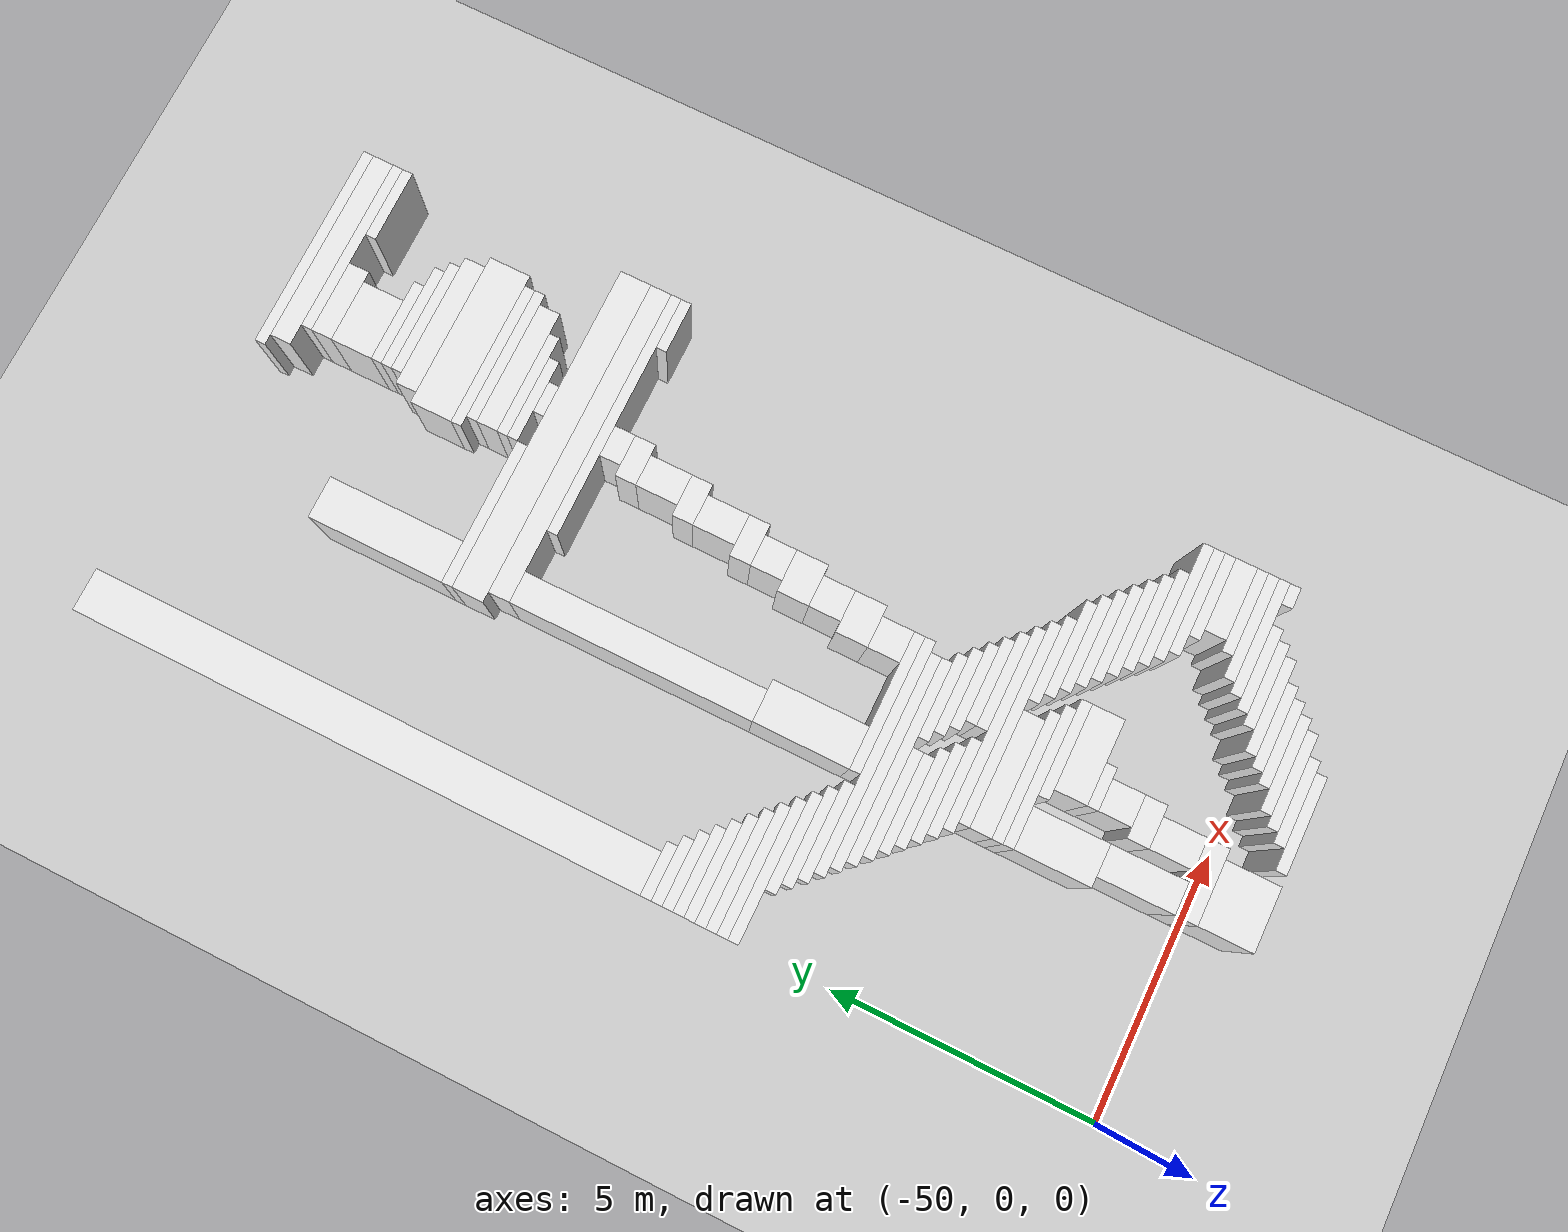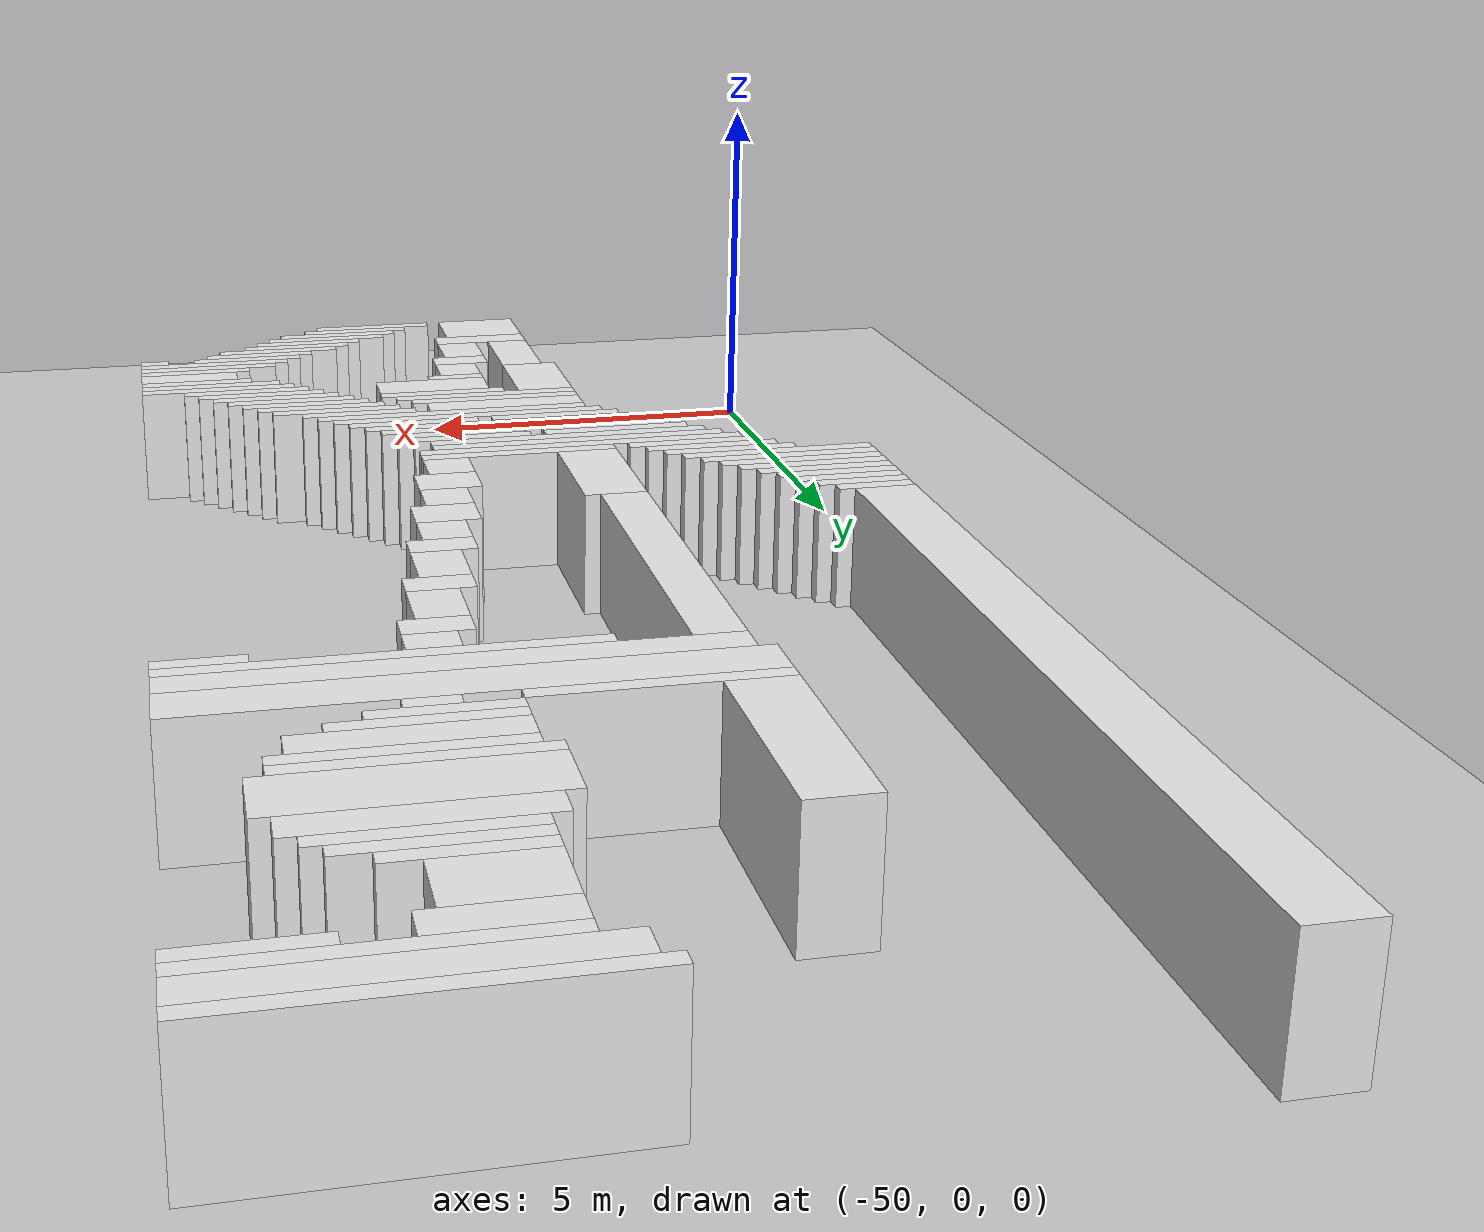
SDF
<sdf version="1.7">
 <world name="default">
  <model name="ground_plane">
   <static>1</static>
   <link name="link">
    <collision name="collision">
     <geometry><plane><normal>0 0 1</normal><size>120 120</size></plane></geometry>
    </collision>
    <visual name="visual">
     <geometry><plane><normal>0 0 1</normal><size>120 120</size></plane></geometry>
     <material>
      <script><uri>file://media/materials/scripts/gazebo.material</uri><name>Gazebo/Grey</name></script>
     </material>
    </visual>
   </link>
  </model>
  <model name="random_complex_01_model">
   <static>1</static>
   <link name="obs_1016">
    <pose>-42.4000 18.9000 0.8000 0 0 0</pose>
    <collision name="obs_1016_col"><geometry><box><size>4.0000 0.2000 1.6000</size></box></geometry></collision>
    <visual name="obs_1016_vis">
     <geometry><box><size>4.0000 0.2000 1.6000</size></box></geometry>
     <material>
      <script><uri>file://media/materials/scripts/gazebo.material</uri><name>Gazebo/White</name></script>
     </material>
    </visual>
   </link>
   <link name="obs_1027">
    <pose>-42.3000 18.6000 0.8000 0 0 0</pose>
    <collision name="obs_1027_col"><geometry><box><size>3.8000 0.4000 1.6000</size></box></geometry></collision>
    <visual name="obs_1027_vis">
     <geometry><box><size>3.8000 0.4000 1.6000</size></box></geometry>
     <material>
      <script><uri>file://media/materials/scripts/gazebo.material</uri><name>Gazebo/White</name></script>
     </material>
    </visual>
   </link>
   <link name="obs_1038">
    <pose>-42.1000 18.3000 0.8000 0 0 0</pose>
    <collision name="obs_1038_col"><geometry><box><size>3.4000 0.2000 1.6000</size></box></geometry></collision>
    <visual name="obs_1038_vis">
     <geometry><box><size>3.4000 0.2000 1.6000</size></box></geometry>
     <material>
      <script><uri>file://media/materials/scripts/gazebo.material</uri><name>Gazebo/White</name></script>
     </material>
    </visual>
   </link>
   <link name="obs_1047">
    <pose>-41.1000 18.1000 0.8000 0 0 0</pose>
    <collision name="obs_1047_col"><geometry><box><size>1.4000 0.2000 1.6000</size></box></geometry></collision>
    <visual name="obs_1047_vis">
     <geometry><box><size>1.4000 0.2000 1.6000</size></box></geometry>
     <material>
      <script><uri>file://media/materials/scripts/gazebo.material</uri><name>Gazebo/White</name></script>
     </material>
    </visual>
   </link>
   <link name="obs_1055">
    <pose>-43.1000 18.0000 0.8000 0 0 0</pose>
    <collision name="obs_1055_col"><geometry><box><size>1.4000 0.4000 1.6000</size></box></geometry></collision>
    <visual name="obs_1055_vis">
     <geometry><box><size>1.4000 0.4000 1.6000</size></box></geometry>
     <material>
      <script><uri>file://media/materials/scripts/gazebo.material</uri><name>Gazebo/White</name></script>
     </material>
    </visual>
   </link>
   <link name="obs_1087">
    <pose>-43.2000 17.4000 0.8000 0 0 0</pose>
    <collision name="obs_1087_col"><geometry><box><size>1.2000 0.8000 1.6000</size></box></geometry></collision>
    <visual name="obs_1087_vis">
     <geometry><box><size>1.2000 0.8000 1.6000</size></box></geometry>
     <material>
      <script><uri>file://media/materials/scripts/gazebo.material</uri><name>Gazebo/White</name></script>
     </material>
    </visual>
   </link>
   <link name="obs_1097">
    <pose>-43.0000 16.9000 0.8000 0 0 0</pose>
    <collision name="obs_1097_col"><geometry><box><size>1.6000 0.2000 1.6000</size></box></geometry></collision>
    <visual name="obs_1097_vis">
     <geometry><box><size>1.6000 0.2000 1.6000</size></box></geometry>
     <material>
      <script><uri>file://media/materials/scripts/gazebo.material</uri><name>Gazebo/White</name></script>
     </material>
    </visual>
   </link>
   <link name="obs_1107">
    <pose>-42.8000 16.7000 0.8000 0 0 0</pose>
    <collision name="obs_1107_col"><geometry><box><size>2.0000 0.2000 1.6000</size></box></geometry></collision>
    <visual name="obs_1107_vis">
     <geometry><box><size>2.0000 0.2000 1.6000</size></box></geometry>
     <material>
      <script><uri>file://media/materials/scripts/gazebo.material</uri><name>Gazebo/White</name></script>
     </material>
    </visual>
   </link>
   <link name="obs_1115">
    <pose>-42.7000 16.5000 0.8000 0 0 0</pose>
    <collision name="obs_1115_col"><geometry><box><size>2.2000 0.2000 1.6000</size></box></geometry></collision>
    <visual name="obs_1115_vis">
     <geometry><box><size>2.2000 0.2000 1.6000</size></box></geometry>
     <material>
      <script><uri>file://media/materials/scripts/gazebo.material</uri><name>Gazebo/White</name></script>
     </material>
    </visual>
   </link>
   <link name="obs_1132">
    <pose>-42.7000 16.2000 0.8000 0 0 0</pose>
    <collision name="obs_1132_col"><geometry><box><size>2.6000 0.4000 1.6000</size></box></geometry></collision>
    <visual name="obs_1132_vis">
     <geometry><box><size>2.6000 0.4000 1.6000</size></box></geometry>
     <material>
      <script><uri>file://media/materials/scripts/gazebo.material</uri><name>Gazebo/White</name></script>
     </material>
    </visual>
   </link>
   <link name="obs_1165">
    <pose>-42.7000 15.6000 0.8000 0 0 0</pose>
    <collision name="obs_1165_col"><geometry><box><size>3.0000 0.8000 1.6000</size></box></geometry></collision>
    <visual name="obs_1165_vis">
     <geometry><box><size>3.0000 0.8000 1.6000</size></box></geometry>
     <material>
      <script><uri>file://media/materials/scripts/gazebo.material</uri><name>Gazebo/White</name></script>
     </material>
    </visual>
   </link>
   <link name="obs_1177">
    <pose>-42.8000 15.1000 0.8000 0 0 0</pose>
    <collision name="obs_1177_col"><geometry><box><size>2.8000 0.2000 1.6000</size></box></geometry></collision>
    <visual name="obs_1177_vis">
     <geometry><box><size>2.8000 0.2000 1.6000</size></box></geometry>
     <material>
      <script><uri>file://media/materials/scripts/gazebo.material</uri><name>Gazebo/White</name></script>
     </material>
    </visual>
   </link>
   <link name="obs_1185">
    <pose>-42.7000 14.9000 0.8000 0 0 0</pose>
    <collision name="obs_1185_col"><geometry><box><size>2.6000 0.2000 1.6000</size></box></geometry></collision>
    <visual name="obs_1185_vis">
     <geometry><box><size>2.6000 0.2000 1.6000</size></box></geometry>
     <material>
      <script><uri>file://media/materials/scripts/gazebo.material</uri><name>Gazebo/White</name></script>
     </material>
    </visual>
   </link>
   <link name="obs_1199">
    <pose>-42.8000 14.6000 0.8000 0 0 0</pose>
    <collision name="obs_1199_col"><geometry><box><size>2.4000 0.4000 1.6000</size></box></geometry></collision>
    <visual name="obs_1199_vis">
     <geometry><box><size>2.4000 0.4000 1.6000</size></box></geometry>
     <material>
      <script><uri>file://media/materials/scripts/gazebo.material</uri><name>Gazebo/White</name></script>
     </material>
    </visual>
   </link>
   <link name="obs_1207">
    <pose>-43.0000 14.3000 0.8000 0 0 0</pose>
    <collision name="obs_1207_col"><geometry><box><size>2.0000 0.2000 1.6000</size></box></geometry></collision>
    <visual name="obs_1207_vis">
     <geometry><box><size>2.0000 0.2000 1.6000</size></box></geometry>
     <material>
      <script><uri>file://media/materials/scripts/gazebo.material</uri><name>Gazebo/White</name></script>
     </material>
    </visual>
   </link>
   <link name="obs_1211">
    <pose>-46.4000 15.3000 0.8000 0 0 0</pose>
    <collision name="obs_1211_col"><geometry><box><size>0.8000 2.6000 1.6000</size></box></geometry></collision>
    <visual name="obs_1211_vis">
     <geometry><box><size>0.8000 2.6000 1.6000</size></box></geometry>
     <material>
      <script><uri>file://media/materials/scripts/gazebo.material</uri><name>Gazebo/White</name></script>
     </material>
    </visual>
   </link>
   <link name="obs_1215">
    <pose>-43.2000 14.1000 0.8000 0 0 0</pose>
    <collision name="obs_1215_col"><geometry><box><size>1.6000 0.2000 1.6000</size></box></geometry></collision>
    <visual name="obs_1215_vis">
     <geometry><box><size>1.6000 0.2000 1.6000</size></box></geometry>
     <material>
      <script><uri>file://media/materials/scripts/gazebo.material</uri><name>Gazebo/White</name></script>
     </material>
    </visual>
   </link>
   <link name="obs_1220">
    <pose>-45.4000 13.9000 0.8000 0 0 0</pose>
    <collision name="obs_1220_col"><geometry><box><size>2.8000 0.2000 1.6000</size></box></geometry></collision>
    <visual name="obs_1220_vis">
     <geometry><box><size>2.8000 0.2000 1.6000</size></box></geometry>
     <material>
      <script><uri>file://media/materials/scripts/gazebo.material</uri><name>Gazebo/White</name></script>
     </material>
    </visual>
   </link>
   <link name="obs_1221">
    <pose>-43.1000 13.9000 0.8000 0 0 0</pose>
    <collision name="obs_1221_col"><geometry><box><size>0.6000 0.2000 1.6000</size></box></geometry></collision>
    <visual name="obs_1221_vis">
     <geometry><box><size>0.6000 0.2000 1.6000</size></box></geometry>
     <material>
      <script><uri>file://media/materials/scripts/gazebo.material</uri><name>Gazebo/White</name></script>
     </material>
    </visual>
   </link>
   <link name="obs_1246">
    <pose>-43.6000 13.5000 0.8000 0 0 0</pose>
    <collision name="obs_1246_col"><geometry><box><size>6.4000 0.6000 1.6000</size></box></geometry></collision>
    <visual name="obs_1246_vis">
     <geometry><box><size>6.4000 0.6000 1.6000</size></box></geometry>
     <material>
      <script><uri>file://media/materials/scripts/gazebo.material</uri><name>Gazebo/White</name></script>
     </material>
    </visual>
   </link>
   <link name="obs_1263">
    <pose>-43.5000 13.0000 0.8000 0 0 0</pose>
    <collision name="obs_1263_col"><geometry><box><size>6.2000 0.4000 1.6000</size></box></geometry></collision>
    <visual name="obs_1263_vis">
     <geometry><box><size>6.2000 0.4000 1.6000</size></box></geometry>
     <material>
      <script><uri>file://media/materials/scripts/gazebo.material</uri><name>Gazebo/White</name></script>
     </material>
    </visual>
   </link>
   <link name="obs_1273">
    <pose>-42.8000 12.7000 0.8000 0 0 0</pose>
    <collision name="obs_1273_col"><geometry><box><size>4.8000 0.2000 1.6000</size></box></geometry></collision>
    <visual name="obs_1273_vis">
     <geometry><box><size>4.8000 0.2000 1.6000</size></box></geometry>
     <material>
      <script><uri>file://media/materials/scripts/gazebo.material</uri><name>Gazebo/White</name></script>
     </material>
    </visual>
   </link>
   <link name="obs_1284">
    <pose>-40.9000 12.5000 0.8000 0 0 0</pose>
    <collision name="obs_1284_col"><geometry><box><size>1.0000 0.2000 1.6000</size></box></geometry></collision>
    <visual name="obs_1284_vis">
     <geometry><box><size>1.0000 0.2000 1.6000</size></box></geometry>
     <material>
      <script><uri>file://media/materials/scripts/gazebo.material</uri><name>Gazebo/White</name></script>
     </material>
    </visual>
   </link>
   <link name="obs_1290">
    <pose>-43.3000 12.4000 0.8000 0 0 0</pose>
    <collision name="obs_1290_col"><geometry><box><size>0.6000 0.4000 1.6000</size></box></geometry></collision>
    <visual name="obs_1290_vis">
     <geometry><box><size>0.6000 0.4000 1.6000</size></box></geometry>
     <material>
      <script><uri>file://media/materials/scripts/gazebo.material</uri><name>Gazebo/White</name></script>
     </material>
    </visual>
   </link>
   <link name="obs_1308">
    <pose>-43.4000 12.0000 0.8000 0 0 0</pose>
    <collision name="obs_1308_col"><geometry><box><size>0.8000 0.4000 1.6000</size></box></geometry></collision>
    <visual name="obs_1308_vis">
     <geometry><box><size>0.8000 0.4000 1.6000</size></box></geometry>
     <material>
      <script><uri>file://media/materials/scripts/gazebo.material</uri><name>Gazebo/White</name></script>
     </material>
    </visual>
   </link>
   <link name="obs_1331">
    <pose>-43.5000 11.4000 0.8000 0 0 0</pose>
    <collision name="obs_1331_col"><geometry><box><size>0.6000 0.8000 1.6000</size></box></geometry></collision>
    <visual name="obs_1331_vis">
     <geometry><box><size>0.6000 0.8000 1.6000</size></box></geometry>
     <material>
      <script><uri>file://media/materials/scripts/gazebo.material</uri><name>Gazebo/White</name></script>
     </material>
    </visual>
   </link>
   <link name="obs_1345">
    <pose>-43.6000 10.8000 0.8000 0 0 0</pose>
    <collision name="obs_1345_col"><geometry><box><size>0.8000 0.4000 1.6000</size></box></geometry></collision>
    <visual name="obs_1345_vis">
     <geometry><box><size>0.8000 0.4000 1.6000</size></box></geometry>
     <material>
      <script><uri>file://media/materials/scripts/gazebo.material</uri><name>Gazebo/White</name></script>
     </material>
    </visual>
   </link>
   <link name="obs_1371">
    <pose>-43.7000 10.2000 0.8000 0 0 0</pose>
    <collision name="obs_1371_col"><geometry><box><size>0.6000 0.8000 1.6000</size></box></geometry></collision>
    <visual name="obs_1371_vis">
     <geometry><box><size>0.6000 0.8000 1.6000</size></box></geometry>
     <material>
      <script><uri>file://media/materials/scripts/gazebo.material</uri><name>Gazebo/White</name></script>
     </material>
    </visual>
   </link>
   <link name="obs_1387">
    <pose>-43.8000 9.6000 0.8000 0 0 0</pose>
    <collision name="obs_1387_col"><geometry><box><size>0.8000 0.4000 1.6000</size></box></geometry></collision>
    <visual name="obs_1387_vis">
     <geometry><box><size>0.8000 0.4000 1.6000</size></box></geometry>
     <material>
      <script><uri>file://media/materials/scripts/gazebo.material</uri><name>Gazebo/White</name></script>
     </material>
    </visual>
   </link>
   <link name="obs_1410">
    <pose>-43.9000 9.1000 0.8000 0 0 0</pose>
    <collision name="obs_1410_col"><geometry><box><size>0.6000 0.6000 1.6000</size></box></geometry></collision>
    <visual name="obs_1410_vis">
     <geometry><box><size>0.6000 0.6000 1.6000</size></box></geometry>
     <material>
      <script><uri>file://media/materials/scripts/gazebo.material</uri><name>Gazebo/White</name></script>
     </material>
    </visual>
   </link>
   <link name="obs_1421">
    <pose>-49.6000 14.0000 0.8000 0 0 0</pose>
    <collision name="obs_1421_col"><geometry><box><size>0.8000 10.8000 1.6000</size></box></geometry></collision>
    <visual name="obs_1421_vis">
     <geometry><box><size>0.8000 10.8000 1.6000</size></box></geometry>
     <material>
      <script><uri>file://media/materials/scripts/gazebo.material</uri><name>Gazebo/White</name></script>
     </material>
    </visual>
   </link>
   <link name="obs_1429">
    <pose>-49.5000 8.5000 0.8000 0 0 0</pose>
    <collision name="obs_1429_col"><geometry><box><size>1.0000 0.2000 1.6000</size></box></geometry></collision>
    <visual name="obs_1429_vis">
     <geometry><box><size>1.0000 0.2000 1.6000</size></box></geometry>
     <material>
      <script><uri>file://media/materials/scripts/gazebo.material</uri><name>Gazebo/White</name></script>
     </material>
    </visual>
   </link>
   <link name="obs_1435">
    <pose>-46.3000 10.5000 0.8000 0 0 0</pose>
    <collision name="obs_1435_col"><geometry><box><size>0.6000 4.6000 1.6000</size></box></geometry></collision>
    <visual name="obs_1435_vis">
     <geometry><box><size>0.6000 4.6000 1.6000</size></box></geometry>
     <material>
      <script><uri>file://media/materials/scripts/gazebo.material</uri><name>Gazebo/White</name></script>
     </material>
    </visual>
   </link>
   <link name="obs_1436">
    <pose>-44.0000 8.5000 0.8000 0 0 0</pose>
    <collision name="obs_1436_col"><geometry><box><size>0.8000 0.6000 1.6000</size></box></geometry></collision>
    <visual name="obs_1436_vis">
     <geometry><box><size>0.8000 0.6000 1.6000</size></box></geometry>
     <material>
      <script><uri>file://media/materials/scripts/gazebo.material</uri><name>Gazebo/White</name></script>
     </material>
    </visual>
   </link>
   <link name="obs_1437">
    <pose>-49.4000 8.3000 0.8000 0 0 0</pose>
    <collision name="obs_1437_col"><geometry><box><size>1.2000 0.2000 1.6000</size></box></geometry></collision>
    <visual name="obs_1437_vis">
     <geometry><box><size>1.2000 0.2000 1.6000</size></box></geometry>
     <material>
      <script><uri>file://media/materials/scripts/gazebo.material</uri><name>Gazebo/White</name></script>
     </material>
    </visual>
   </link>
   <link name="obs_1446">
    <pose>-49.3000 8.1000 0.8000 0 0 0</pose>
    <collision name="obs_1446_col"><geometry><box><size>1.4000 0.2000 1.6000</size></box></geometry></collision>
    <visual name="obs_1446_vis">
     <geometry><box><size>1.4000 0.2000 1.6000</size></box></geometry>
     <material>
      <script><uri>file://media/materials/scripts/gazebo.material</uri><name>Gazebo/White</name></script>
     </material>
    </visual>
   </link>
   <link name="obs_1452">
    <pose>-49.2000 7.9000 0.8000 0 0 0</pose>
    <collision name="obs_1452_col"><geometry><box><size>1.6000 0.2000 1.6000</size></box></geometry></collision>
    <visual name="obs_1452_vis">
     <geometry><box><size>1.6000 0.2000 1.6000</size></box></geometry>
     <material>
      <script><uri>file://media/materials/scripts/gazebo.material</uri><name>Gazebo/White</name></script>
     </material>
    </visual>
   </link>
   <link name="obs_1458">
    <pose>-44.1000 7.9000 0.8000 0 0 0</pose>
    <collision name="obs_1458_col"><geometry><box><size>0.6000 0.6000 1.6000</size></box></geometry></collision>
    <visual name="obs_1458_vis">
     <geometry><box><size>0.6000 0.6000 1.6000</size></box></geometry>
     <material>
      <script><uri>file://media/materials/scripts/gazebo.material</uri><name>Gazebo/White</name></script>
     </material>
    </visual>
   </link>
   <link name="obs_1462">
    <pose>-49.1000 7.7000 0.8000 0 0 0</pose>
    <collision name="obs_1462_col"><geometry><box><size>1.8000 0.2000 1.6000</size></box></geometry></collision>
    <visual name="obs_1462_vis">
     <geometry><box><size>1.8000 0.2000 1.6000</size></box></geometry>
     <material>
      <script><uri>file://media/materials/scripts/gazebo.material</uri><name>Gazebo/White</name></script>
     </material>
    </visual>
   </link>
   <link name="obs_1469">
    <pose>-49.0000 7.5000 0.8000 0 0 0</pose>
    <collision name="obs_1469_col"><geometry><box><size>2.0000 0.2000 1.6000</size></box></geometry></collision>
    <visual name="obs_1469_vis">
     <geometry><box><size>2.0000 0.2000 1.6000</size></box></geometry>
     <material>
      <script><uri>file://media/materials/scripts/gazebo.material</uri><name>Gazebo/White</name></script>
     </material>
    </visual>
   </link>
   <link name="obs_1479">
    <pose>-48.9000 7.3000 0.8000 0 0 0</pose>
    <collision name="obs_1479_col"><geometry><box><size>2.2000 0.2000 1.6000</size></box></geometry></collision>
    <visual name="obs_1479_vis">
     <geometry><box><size>2.2000 0.2000 1.6000</size></box></geometry>
     <material>
      <script><uri>file://media/materials/scripts/gazebo.material</uri><name>Gazebo/White</name></script>
     </material>
    </visual>
   </link>
   <link name="obs_1484">
    <pose>-44.2000 7.3000 0.8000 0 0 0</pose>
    <collision name="obs_1484_col"><geometry><box><size>0.8000 0.6000 1.6000</size></box></geometry></collision>
    <visual name="obs_1484_vis">
     <geometry><box><size>0.8000 0.6000 1.6000</size></box></geometry>
     <material>
      <script><uri>file://media/materials/scripts/gazebo.material</uri><name>Gazebo/White</name></script>
     </material>
    </visual>
   </link>
   <link name="obs_1485">
    <pose>-48.8000 7.1000 0.8000 0 0 0</pose>
    <collision name="obs_1485_col"><geometry><box><size>2.4000 0.2000 1.6000</size></box></geometry></collision>
    <visual name="obs_1485_vis">
     <geometry><box><size>2.4000 0.2000 1.6000</size></box></geometry>
     <material>
      <script><uri>file://media/materials/scripts/gazebo.material</uri><name>Gazebo/White</name></script>
     </material>
    </visual>
   </link>
   <link name="obs_1493">
    <pose>-48.7000 6.9000 0.8000 0 0 0</pose>
    <collision name="obs_1493_col"><geometry><box><size>2.6000 0.2000 1.6000</size></box></geometry></collision>
    <visual name="obs_1493_vis">
     <geometry><box><size>2.6000 0.2000 1.6000</size></box></geometry>
     <material>
      <script><uri>file://media/materials/scripts/gazebo.material</uri><name>Gazebo/White</name></script>
     </material>
    </visual>
   </link>
   <link name="obs_1499">
    <pose>-48.1000 6.7000 0.8000 0 0 0</pose>
    <collision name="obs_1499_col"><geometry><box><size>1.8000 0.2000 1.6000</size></box></geometry></collision>
    <visual name="obs_1499_vis">
     <geometry><box><size>1.8000 0.2000 1.6000</size></box></geometry>
     <material>
      <script><uri>file://media/materials/scripts/gazebo.material</uri><name>Gazebo/White</name></script>
     </material>
    </visual>
   </link>
   <link name="obs_1507">
    <pose>-46.2000 7.3000 0.8000 0 0 0</pose>
    <collision name="obs_1507_col"><geometry><box><size>0.8000 1.8000 1.6000</size></box></geometry></collision>
    <visual name="obs_1507_vis">
     <geometry><box><size>0.8000 1.8000 1.6000</size></box></geometry>
     <material>
      <script><uri>file://media/materials/scripts/gazebo.material</uri><name>Gazebo/White</name></script>
     </material>
    </visual>
   </link>
   <link name="obs_1510">
    <pose>-44.3000 6.7000 0.8000 0 0 0</pose>
    <collision name="obs_1510_col"><geometry><box><size>0.6000 0.6000 1.6000</size></box></geometry></collision>
    <visual name="obs_1510_vis">
     <geometry><box><size>0.6000 0.6000 1.6000</size></box></geometry>
     <material>
      <script><uri>file://media/materials/scripts/gazebo.material</uri><name>Gazebo/White</name></script>
     </material>
    </visual>
   </link>
   <link name="obs_1512">
    <pose>-47.9000 6.5000 0.8000 0 0 0</pose>
    <collision name="obs_1512_col"><geometry><box><size>1.8000 0.2000 1.6000</size></box></geometry></collision>
    <visual name="obs_1512_vis">
     <geometry><box><size>1.8000 0.2000 1.6000</size></box></geometry>
     <material>
      <script><uri>file://media/materials/scripts/gazebo.material</uri><name>Gazebo/White</name></script>
     </material>
    </visual>
   </link>
   <link name="obs_1519">
    <pose>-47.7000 6.3000 0.8000 0 0 0</pose>
    <collision name="obs_1519_col"><geometry><box><size>1.8000 0.2000 1.6000</size></box></geometry></collision>
    <visual name="obs_1519_vis">
     <geometry><box><size>1.8000 0.2000 1.6000</size></box></geometry>
     <material>
      <script><uri>file://media/materials/scripts/gazebo.material</uri><name>Gazebo/White</name></script>
     </material>
    </visual>
   </link>
   <link name="obs_1520">
    <pose>-45.3000 6.3000 0.8000 0 0 0</pose>
    <collision name="obs_1520_col"><geometry><box><size>2.6000 0.2000 1.6000</size></box></geometry></collision>
    <visual name="obs_1520_vis">
     <geometry><box><size>2.6000 0.2000 1.6000</size></box></geometry>
     <material>
      <script><uri>file://media/materials/scripts/gazebo.material</uri><name>Gazebo/White</name></script>
     </material>
    </visual>
   </link>
   <link name="obs_1528">
    <pose>-46.2000 6.1000 0.8000 0 0 0</pose>
    <collision name="obs_1528_col"><geometry><box><size>4.4000 0.2000 1.6000</size></box></geometry></collision>
    <visual name="obs_1528_vis">
     <geometry><box><size>4.4000 0.2000 1.6000</size></box></geometry>
     <material>
      <script><uri>file://media/materials/scripts/gazebo.material</uri><name>Gazebo/White</name></script>
     </material>
    </visual>
   </link>
   <link name="obs_1537">
    <pose>-46.2000 5.9000 0.8000 0 0 0</pose>
    <collision name="obs_1537_col"><geometry><box><size>4.0000 0.2000 1.6000</size></box></geometry></collision>
    <visual name="obs_1537_vis">
     <geometry><box><size>4.0000 0.2000 1.6000</size></box></geometry>
     <material>
      <script><uri>file://media/materials/scripts/gazebo.material</uri><name>Gazebo/White</name></script>
     </material>
    </visual>
   </link>
   <link name="obs_1545">
    <pose>-46.1000 5.7000 0.8000 0 0 0</pose>
    <collision name="obs_1545_col"><geometry><box><size>3.8000 0.2000 1.6000</size></box></geometry></collision>
    <visual name="obs_1545_vis">
     <geometry><box><size>3.8000 0.2000 1.6000</size></box></geometry>
     <material>
      <script><uri>file://media/materials/scripts/gazebo.material</uri><name>Gazebo/White</name></script>
     </material>
    </visual>
   </link>
   <link name="obs_1552">
    <pose>-46.8000 5.5000 0.8000 0 0 0</pose>
    <collision name="obs_1552_col"><geometry><box><size>2.0000 0.2000 1.6000</size></box></geometry></collision>
    <visual name="obs_1552_vis">
     <geometry><box><size>2.0000 0.2000 1.6000</size></box></geometry>
     <material>
      <script><uri>file://media/materials/scripts/gazebo.material</uri><name>Gazebo/White</name></script>
     </material>
    </visual>
   </link>
   <link name="obs_1553">
    <pose>-44.8000 5.5000 0.8000 0 0 0</pose>
    <collision name="obs_1553_col"><geometry><box><size>1.6000 0.2000 1.6000</size></box></geometry></collision>
    <visual name="obs_1553_vis">
     <geometry><box><size>1.6000 0.2000 1.6000</size></box></geometry>
     <material>
      <script><uri>file://media/materials/scripts/gazebo.material</uri><name>Gazebo/White</name></script>
     </material>
    </visual>
   </link>
   <link name="obs_1561">
    <pose>-46.7000 5.3000 0.8000 0 0 0</pose>
    <collision name="obs_1561_col"><geometry><box><size>1.8000 0.2000 1.6000</size></box></geometry></collision>
    <visual name="obs_1561_vis">
     <geometry><box><size>1.8000 0.2000 1.6000</size></box></geometry>
     <material>
      <script><uri>file://media/materials/scripts/gazebo.material</uri><name>Gazebo/White</name></script>
     </material>
    </visual>
   </link>
   <link name="obs_1562">
    <pose>-44.6000 5.3000 0.8000 0 0 0</pose>
    <collision name="obs_1562_col"><geometry><box><size>1.6000 0.2000 1.6000</size></box></geometry></collision>
    <visual name="obs_1562_vis">
     <geometry><box><size>1.6000 0.2000 1.6000</size></box></geometry>
     <material>
      <script><uri>file://media/materials/scripts/gazebo.material</uri><name>Gazebo/White</name></script>
     </material>
    </visual>
   </link>
   <link name="obs_1572">
    <pose>-46.5000 5.1000 0.8000 0 0 0</pose>
    <collision name="obs_1572_col"><geometry><box><size>1.8000 0.2000 1.6000</size></box></geometry></collision>
    <visual name="obs_1572_vis">
     <geometry><box><size>1.8000 0.2000 1.6000</size></box></geometry>
     <material>
      <script><uri>file://media/materials/scripts/gazebo.material</uri><name>Gazebo/White</name></script>
     </material>
    </visual>
   </link>
   <link name="obs_1573">
    <pose>-44.4000 5.1000 0.8000 0 0 0</pose>
    <collision name="obs_1573_col"><geometry><box><size>1.6000 0.2000 1.6000</size></box></geometry></collision>
    <visual name="obs_1573_vis">
     <geometry><box><size>1.6000 0.2000 1.6000</size></box></geometry>
     <material>
      <script><uri>file://media/materials/scripts/gazebo.material</uri><name>Gazebo/White</name></script>
     </material>
    </visual>
   </link>
   <link name="obs_1581">
    <pose>-46.3000 4.9000 0.8000 0 0 0</pose>
    <collision name="obs_1581_col"><geometry><box><size>1.8000 0.2000 1.6000</size></box></geometry></collision>
    <visual name="obs_1581_vis">
     <geometry><box><size>1.8000 0.2000 1.6000</size></box></geometry>
     <material>
      <script><uri>file://media/materials/scripts/gazebo.material</uri><name>Gazebo/White</name></script>
     </material>
    </visual>
   </link>
   <link name="obs_1582">
    <pose>-44.2000 4.9000 0.8000 0 0 0</pose>
    <collision name="obs_1582_col"><geometry><box><size>1.6000 0.2000 1.6000</size></box></geometry></collision>
    <visual name="obs_1582_vis">
     <geometry><box><size>1.6000 0.2000 1.6000</size></box></geometry>
     <material>
      <script><uri>file://media/materials/scripts/gazebo.material</uri><name>Gazebo/White</name></script>
     </material>
    </visual>
   </link>
   <link name="obs_1591">
    <pose>-46.1000 4.7000 0.8000 0 0 0</pose>
    <collision name="obs_1591_col"><geometry><box><size>1.8000 0.2000 1.6000</size></box></geometry></collision>
    <visual name="obs_1591_vis">
     <geometry><box><size>1.8000 0.2000 1.6000</size></box></geometry>
     <material>
      <script><uri>file://media/materials/scripts/gazebo.material</uri><name>Gazebo/White</name></script>
     </material>
    </visual>
   </link>
   <link name="obs_1592">
    <pose>-44.1000 4.7000 0.8000 0 0 0</pose>
    <collision name="obs_1592_col"><geometry><box><size>1.8000 0.2000 1.6000</size></box></geometry></collision>
    <visual name="obs_1592_vis">
     <geometry><box><size>1.8000 0.2000 1.6000</size></box></geometry>
     <material>
      <script><uri>file://media/materials/scripts/gazebo.material</uri><name>Gazebo/White</name></script>
     </material>
    </visual>
   </link>
   <link name="obs_1603">
    <pose>-44.9000 4.5000 0.8000 0 0 0</pose>
    <collision name="obs_1603_col"><geometry><box><size>3.8000 0.2000 1.6000</size></box></geometry></collision>
    <visual name="obs_1603_vis">
     <geometry><box><size>3.8000 0.2000 1.6000</size></box></geometry>
     <material>
      <script><uri>file://media/materials/scripts/gazebo.material</uri><name>Gazebo/White</name></script>
     </material>
    </visual>
   </link>
   <link name="obs_1612">
    <pose>-44.7000 4.3000 0.8000 0 0 0</pose>
    <collision name="obs_1612_col"><geometry><box><size>3.8000 0.2000 1.6000</size></box></geometry></collision>
    <visual name="obs_1612_vis">
     <geometry><box><size>3.8000 0.2000 1.6000</size></box></geometry>
     <material>
      <script><uri>file://media/materials/scripts/gazebo.material</uri><name>Gazebo/White</name></script>
     </material>
    </visual>
   </link>
   <link name="obs_1621">
    <pose>-43.4000 4.1000 0.8000 0 0 0</pose>
    <collision name="obs_1621_col"><geometry><box><size>1.6000 0.2000 1.6000</size></box></geometry></collision>
    <visual name="obs_1621_vis">
     <geometry><box><size>1.6000 0.2000 1.6000</size></box></geometry>
     <material>
      <script><uri>file://media/materials/scripts/gazebo.material</uri><name>Gazebo/White</name></script>
     </material>
    </visual>
   </link>
   <link name="obs_1634">
    <pose>-45.5000 4.0000 0.8000 0 0 0</pose>
    <collision name="obs_1634_col"><geometry><box><size>2.2000 0.4000 1.6000</size></box></geometry></collision>
    <visual name="obs_1634_vis">
     <geometry><box><size>2.2000 0.4000 1.6000</size></box></geometry>
     <material>
      <script><uri>file://media/materials/scripts/gazebo.material</uri><name>Gazebo/White</name></script>
     </material>
    </visual>
   </link>
   <link name="obs_1635">
    <pose>-43.1000 3.9000 0.8000 0 0 0</pose>
    <collision name="obs_1635_col"><geometry><box><size>1.8000 0.2000 1.6000</size></box></geometry></collision>
    <visual name="obs_1635_vis">
     <geometry><box><size>1.8000 0.2000 1.6000</size></box></geometry>
     <material>
      <script><uri>file://media/materials/scripts/gazebo.material</uri><name>Gazebo/White</name></script>
     </material>
    </visual>
   </link>
   <link name="obs_1648">
    <pose>-45.4000 3.7000 0.8000 0 0 0</pose>
    <collision name="obs_1648_col"><geometry><box><size>2.4000 0.2000 1.6000</size></box></geometry></collision>
    <visual name="obs_1648_vis">
     <geometry><box><size>2.4000 0.2000 1.6000</size></box></geometry>
     <material>
      <script><uri>file://media/materials/scripts/gazebo.material</uri><name>Gazebo/White</name></script>
     </material>
    </visual>
   </link>
   <link name="obs_1649">
    <pose>-42.9000 3.7000 0.8000 0 0 0</pose>
    <collision name="obs_1649_col"><geometry><box><size>1.8000 0.2000 1.6000</size></box></geometry></collision>
    <visual name="obs_1649_vis">
     <geometry><box><size>1.8000 0.2000 1.6000</size></box></geometry>
     <material>
      <script><uri>file://media/materials/scripts/gazebo.material</uri><name>Gazebo/White</name></script>
     </material>
    </visual>
   </link>
   <link name="obs_1666">
    <pose>-45.3000 3.5000 0.8000 0 0 0</pose>
    <collision name="obs_1666_col"><geometry><box><size>2.6000 0.2000 1.6000</size></box></geometry></collision>
    <visual name="obs_1666_vis">
     <geometry><box><size>2.6000 0.2000 1.6000</size></box></geometry>
     <material>
      <script><uri>file://media/materials/scripts/gazebo.material</uri><name>Gazebo/White</name></script>
     </material>
    </visual>
   </link>
   <link name="obs_1667">
    <pose>-42.7000 3.5000 0.8000 0 0 0</pose>
    <collision name="obs_1667_col"><geometry><box><size>1.8000 0.2000 1.6000</size></box></geometry></collision>
    <visual name="obs_1667_vis">
     <geometry><box><size>1.8000 0.2000 1.6000</size></box></geometry>
     <material>
      <script><uri>file://media/materials/scripts/gazebo.material</uri><name>Gazebo/White</name></script>
     </material>
    </visual>
   </link>
   <link name="obs_1678">
    <pose>-44.7000 3.3000 0.8000 0 0 0</pose>
    <collision name="obs_1678_col"><geometry><box><size>1.8000 0.2000 1.6000</size></box></geometry></collision>
    <visual name="obs_1678_vis">
     <geometry><box><size>1.8000 0.2000 1.6000</size></box></geometry>
     <material>
      <script><uri>file://media/materials/scripts/gazebo.material</uri><name>Gazebo/White</name></script>
     </material>
    </visual>
   </link>
   <link name="obs_1679">
    <pose>-42.5000 3.3000 0.8000 0 0 0</pose>
    <collision name="obs_1679_col"><geometry><box><size>1.8000 0.2000 1.6000</size></box></geometry></collision>
    <visual name="obs_1679_vis">
     <geometry><box><size>1.8000 0.2000 1.6000</size></box></geometry>
     <material>
      <script><uri>file://media/materials/scripts/gazebo.material</uri><name>Gazebo/White</name></script>
     </material>
    </visual>
   </link>
   <link name="obs_1691">
    <pose>-42.3000 3.1000 0.8000 0 0 0</pose>
    <collision name="obs_1691_col"><geometry><box><size>1.8000 0.2000 1.6000</size></box></geometry></collision>
    <visual name="obs_1691_vis">
     <geometry><box><size>1.8000 0.2000 1.6000</size></box></geometry>
     <material>
      <script><uri>file://media/materials/scripts/gazebo.material</uri><name>Gazebo/White</name></script>
     </material>
    </visual>
   </link>
   <link name="obs_1703">
    <pose>-42.1000 2.9000 0.8000 0 0 0</pose>
    <collision name="obs_1703_col"><geometry><box><size>1.8000 0.2000 1.6000</size></box></geometry></collision>
    <visual name="obs_1703_vis">
     <geometry><box><size>1.8000 0.2000 1.6000</size></box></geometry>
     <material>
      <script><uri>file://media/materials/scripts/gazebo.material</uri><name>Gazebo/White</name></script>
     </material>
    </visual>
   </link>
   <link name="obs_1711">
    <pose>-44.6000 2.9000 0.8000 0 0 0</pose>
    <collision name="obs_1711_col"><geometry><box><size>1.6000 0.6000 1.6000</size></box></geometry></collision>
    <visual name="obs_1711_vis">
     <geometry><box><size>1.6000 0.6000 1.6000</size></box></geometry>
     <material>
      <script><uri>file://media/materials/scripts/gazebo.material</uri><name>Gazebo/White</name></script>
     </material>
    </visual>
   </link>
   <link name="obs_1715">
    <pose>-41.9000 2.7000 0.8000 0 0 0</pose>
    <collision name="obs_1715_col"><geometry><box><size>1.8000 0.2000 1.6000</size></box></geometry></collision>
    <visual name="obs_1715_vis">
     <geometry><box><size>1.8000 0.2000 1.6000</size></box></geometry>
     <material>
      <script><uri>file://media/materials/scripts/gazebo.material</uri><name>Gazebo/White</name></script>
     </material>
    </visual>
   </link>
   <link name="obs_1724">
    <pose>-45.0000 2.5000 0.8000 0 0 0</pose>
    <collision name="obs_1724_col"><geometry><box><size>0.8000 0.2000 1.6000</size></box></geometry></collision>
    <visual name="obs_1724_vis">
     <geometry><box><size>0.8000 0.2000 1.6000</size></box></geometry>
     <material>
      <script><uri>file://media/materials/scripts/gazebo.material</uri><name>Gazebo/White</name></script>
     </material>
    </visual>
   </link>
   <link name="obs_1725">
    <pose>-41.5000 2.5000 0.8000 0 0 0</pose>
    <collision name="obs_1725_col"><geometry><box><size>2.2000 0.2000 1.6000</size></box></geometry></collision>
    <visual name="obs_1725_vis">
     <geometry><box><size>2.2000 0.2000 1.6000</size></box></geometry>
     <material>
      <script><uri>file://media/materials/scripts/gazebo.material</uri><name>Gazebo/White</name></script>
     </material>
    </visual>
   </link>
   <link name="obs_1733">
    <pose>-41.4000 2.3000 0.8000 0 0 0</pose>
    <collision name="obs_1733_col"><geometry><box><size>2.0000 0.2000 1.6000</size></box></geometry></collision>
    <visual name="obs_1733_vis">
     <geometry><box><size>2.0000 0.2000 1.6000</size></box></geometry>
     <material>
      <script><uri>file://media/materials/scripts/gazebo.material</uri><name>Gazebo/White</name></script>
     </material>
    </visual>
   </link>
   <link name="obs_1740">
    <pose>-46.2000 2.7000 0.8000 0 0 0</pose>
    <collision name="obs_1740_col"><geometry><box><size>0.8000 1.4000 1.6000</size></box></geometry></collision>
    <visual name="obs_1740_vis">
     <geometry><box><size>0.8000 1.4000 1.6000</size></box></geometry>
     <material>
      <script><uri>file://media/materials/scripts/gazebo.material</uri><name>Gazebo/White</name></script>
     </material>
    </visual>
   </link>
   <link name="obs_1745">
    <pose>-41.2000 2.1000 0.8000 0 0 0</pose>
    <collision name="obs_1745_col"><geometry><box><size>1.6000 0.2000 1.6000</size></box></geometry></collision>
    <visual name="obs_1745_vis">
     <geometry><box><size>1.6000 0.2000 1.6000</size></box></geometry>
     <material>
      <script><uri>file://media/materials/scripts/gazebo.material</uri><name>Gazebo/White</name></script>
     </material>
    </visual>
   </link>
   <link name="obs_1751">
    <pose>-45.1000 2.1000 0.8000 0 0 0</pose>
    <collision name="obs_1751_col"><geometry><box><size>0.6000 0.6000 1.6000</size></box></geometry></collision>
    <visual name="obs_1751_vis">
     <geometry><box><size>0.6000 0.6000 1.6000</size></box></geometry>
     <material>
      <script><uri>file://media/materials/scripts/gazebo.material</uri><name>Gazebo/White</name></script>
     </material>
    </visual>
   </link>
   <link name="obs_1764">
    <pose>-41.1000 1.8000 0.8000 0 0 0</pose>
    <collision name="obs_1764_col"><geometry><box><size>1.4000 0.4000 1.6000</size></box></geometry></collision>
    <visual name="obs_1764_vis">
     <geometry><box><size>1.4000 0.4000 1.6000</size></box></geometry>
     <material>
      <script><uri>file://media/materials/scripts/gazebo.material</uri><name>Gazebo/White</name></script>
     </material>
    </visual>
   </link>
   <link name="obs_1774">
    <pose>-45.2000 1.6000 0.8000 0 0 0</pose>
    <collision name="obs_1774_col"><geometry><box><size>0.8000 0.4000 1.6000</size></box></geometry></collision>
    <visual name="obs_1774_vis">
     <geometry><box><size>0.8000 0.4000 1.6000</size></box></geometry>
     <material>
      <script><uri>file://media/materials/scripts/gazebo.material</uri><name>Gazebo/White</name></script>
     </material>
    </visual>
   </link>
   <link name="obs_1776">
    <pose>-41.2000 1.5000 0.8000 0 0 0</pose>
    <collision name="obs_1776_col"><geometry><box><size>1.6000 0.2000 1.6000</size></box></geometry></collision>
    <visual name="obs_1776_vis">
     <geometry><box><size>1.6000 0.2000 1.6000</size></box></geometry>
     <material>
      <script><uri>file://media/materials/scripts/gazebo.material</uri><name>Gazebo/White</name></script>
     </material>
    </visual>
   </link>
   <link name="obs_1785">
    <pose>-41.4000 1.3000 0.8000 0 0 0</pose>
    <collision name="obs_1785_col"><geometry><box><size>2.0000 0.2000 1.6000</size></box></geometry></collision>
    <visual name="obs_1785_vis">
     <geometry><box><size>2.0000 0.2000 1.6000</size></box></geometry>
     <material>
      <script><uri>file://media/materials/scripts/gazebo.material</uri><name>Gazebo/White</name></script>
     </material>
    </visual>
   </link>
   <link name="obs_1793">
    <pose>-41.5000 1.1000 0.8000 0 0 0</pose>
    <collision name="obs_1793_col"><geometry><box><size>2.2000 0.2000 1.6000</size></box></geometry></collision>
    <visual name="obs_1793_vis">
     <geometry><box><size>2.2000 0.2000 1.6000</size></box></geometry>
     <material>
      <script><uri>file://media/materials/scripts/gazebo.material</uri><name>Gazebo/White</name></script>
     </material>
    </visual>
   </link>
   <link name="obs_1802">
    <pose>-42.0000 0.9000 0.8000 0 0 0</pose>
    <collision name="obs_1802_col"><geometry><box><size>1.6000 0.2000 1.6000</size></box></geometry></collision>
    <visual name="obs_1802_vis">
     <geometry><box><size>1.6000 0.2000 1.6000</size></box></geometry>
     <material>
      <script><uri>file://media/materials/scripts/gazebo.material</uri><name>Gazebo/White</name></script>
     </material>
    </visual>
   </link>
   <link name="obs_1803">
    <pose>-40.6000 0.9000 0.8000 0 0 0</pose>
    <collision name="obs_1803_col"><geometry><box><size>0.4000 0.2000 1.6000</size></box></geometry></collision>
    <visual name="obs_1803_vis">
     <geometry><box><size>0.4000 0.2000 1.6000</size></box></geometry>
     <material>
      <script><uri>file://media/materials/scripts/gazebo.material</uri><name>Gazebo/White</name></script>
     </material>
    </visual>
   </link>
   <link name="obs_1811">
    <pose>-46.1000 1.3000 0.8000 0 0 0</pose>
    <collision name="obs_1811_col"><geometry><box><size>0.6000 1.4000 1.6000</size></box></geometry></collision>
    <visual name="obs_1811_vis">
     <geometry><box><size>0.6000 1.4000 1.6000</size></box></geometry>
     <material>
      <script><uri>file://media/materials/scripts/gazebo.material</uri><name>Gazebo/White</name></script>
     </material>
    </visual>
   </link>
   <link name="obs_1812">
    <pose>-45.3000 1.0000 0.8000 0 0 0</pose>
    <collision name="obs_1812_col"><geometry><box><size>0.6000 0.8000 1.6000</size></box></geometry></collision>
    <visual name="obs_1812_vis">
     <geometry><box><size>0.6000 0.8000 1.6000</size></box></geometry>
     <material>
      <script><uri>file://media/materials/scripts/gazebo.material</uri><name>Gazebo/White</name></script>
     </material>
    </visual>
   </link>
   <link name="obs_1815">
    <pose>-42.2000 0.7000 0.8000 0 0 0</pose>
    <collision name="obs_1815_col"><geometry><box><size>1.6000 0.2000 1.6000</size></box></geometry></collision>
    <visual name="obs_1815_vis">
     <geometry><box><size>1.6000 0.2000 1.6000</size></box></geometry>
     <material>
      <script><uri>file://media/materials/scripts/gazebo.material</uri><name>Gazebo/White</name></script>
     </material>
    </visual>
   </link>
   <link name="obs_1822">
    <pose>-42.5000 0.5000 0.8000 0 0 0</pose>
    <collision name="obs_1822_col"><geometry><box><size>1.8000 0.2000 1.6000</size></box></geometry></collision>
    <visual name="obs_1822_vis">
     <geometry><box><size>1.8000 0.2000 1.6000</size></box></geometry>
     <material>
      <script><uri>file://media/materials/scripts/gazebo.material</uri><name>Gazebo/White</name></script>
     </material>
    </visual>
   </link>
   <link name="obs_1828">
    <pose>-45.7000 0.4000 0.8000 0 0 0</pose>
    <collision name="obs_1828_col"><geometry><box><size>1.4000 0.4000 1.6000</size></box></geometry></collision>
    <visual name="obs_1828_vis">
     <geometry><box><size>1.4000 0.4000 1.6000</size></box></geometry>
     <material>
      <script><uri>file://media/materials/scripts/gazebo.material</uri><name>Gazebo/White</name></script>
     </material>
    </visual>
   </link>
   <link name="obs_1830">
    <pose>-42.8000 0.3000 0.8000 0 0 0</pose>
    <collision name="obs_1830_col"><geometry><box><size>1.6000 0.2000 1.6000</size></box></geometry></collision>
    <visual name="obs_1830_vis">
     <geometry><box><size>1.6000 0.2000 1.6000</size></box></geometry>
     <material>
      <script><uri>file://media/materials/scripts/gazebo.material</uri><name>Gazebo/White</name></script>
     </material>
    </visual>
   </link>
   <link name="obs_1840">
    <pose>-43.0000 0.1000 0.8000 0 0 0</pose>
    <collision name="obs_1840_col"><geometry><box><size>1.6000 0.2000 1.6000</size></box></geometry></collision>
    <visual name="obs_1840_vis">
     <geometry><box><size>1.6000 0.2000 1.6000</size></box></geometry>
     <material>
      <script><uri>file://media/materials/scripts/gazebo.material</uri><name>Gazebo/White</name></script>
     </material>
    </visual>
   </link>
   <link name="obs_1849">
    <pose>-43.3000 -0.1000 0.8000 0 0 0</pose>
    <collision name="obs_1849_col"><geometry><box><size>1.8000 0.2000 1.6000</size></box></geometry></collision>
    <visual name="obs_1849_vis">
     <geometry><box><size>1.8000 0.2000 1.6000</size></box></geometry>
     <material>
      <script><uri>file://media/materials/scripts/gazebo.material</uri><name>Gazebo/White</name></script>
     </material>
    </visual>
   </link>
   <link name="obs_1855">
    <pose>-43.5000 -0.3000 0.8000 0 0 0</pose>
    <collision name="obs_1855_col"><geometry><box><size>1.8000 0.2000 1.6000</size></box></geometry></collision>
    <visual name="obs_1855_vis">
     <geometry><box><size>1.8000 0.2000 1.6000</size></box></geometry>
     <material>
      <script><uri>file://media/materials/scripts/gazebo.material</uri><name>Gazebo/White</name></script>
     </material>
    </visual>
   </link>
   <link name="obs_1861">
    <pose>-43.8000 -0.5000 0.8000 0 0 0</pose>
    <collision name="obs_1861_col"><geometry><box><size>1.6000 0.2000 1.6000</size></box></geometry></collision>
    <visual name="obs_1861_vis">
     <geometry><box><size>1.6000 0.2000 1.6000</size></box></geometry>
     <material>
      <script><uri>file://media/materials/scripts/gazebo.material</uri><name>Gazebo/White</name></script>
     </material>
    </visual>
   </link>
   <link name="obs_1868">
    <pose>-45.8000 -0.3000 0.8000 0 0 0</pose>
    <collision name="obs_1868_col"><geometry><box><size>1.2000 1.0000 1.6000</size></box></geometry></collision>
    <visual name="obs_1868_vis">
     <geometry><box><size>1.2000 1.0000 1.6000</size></box></geometry>
     <material>
      <script><uri>file://media/materials/scripts/gazebo.material</uri><name>Gazebo/White</name></script>
     </material>
    </visual>
   </link>
   <link name="obs_1870">
    <pose>-44.1000 -0.7000 0.8000 0 0 0</pose>
    <collision name="obs_1870_col"><geometry><box><size>1.8000 0.2000 1.6000</size></box></geometry></collision>
    <visual name="obs_1870_vis">
     <geometry><box><size>1.8000 0.2000 1.6000</size></box></geometry>
     <material>
      <script><uri>file://media/materials/scripts/gazebo.material</uri><name>Gazebo/White</name></script>
     </material>
    </visual>
   </link>
  </model>
 </world>
</sdf>
